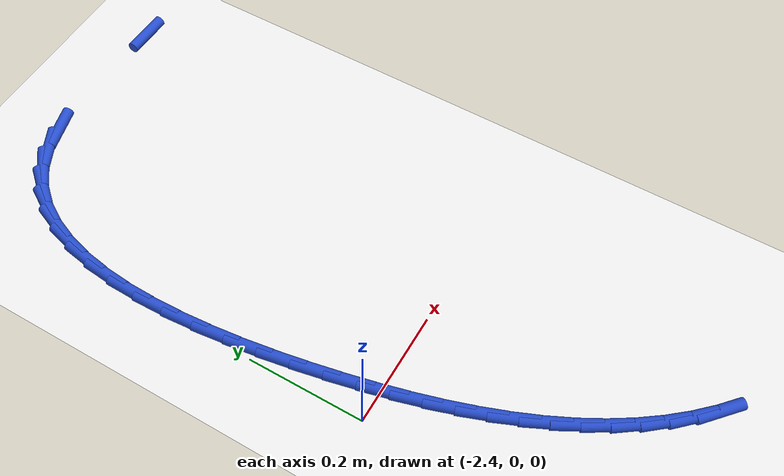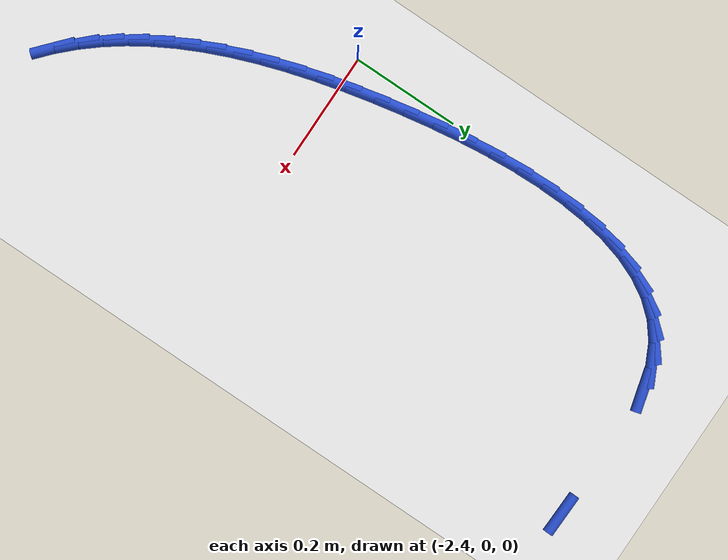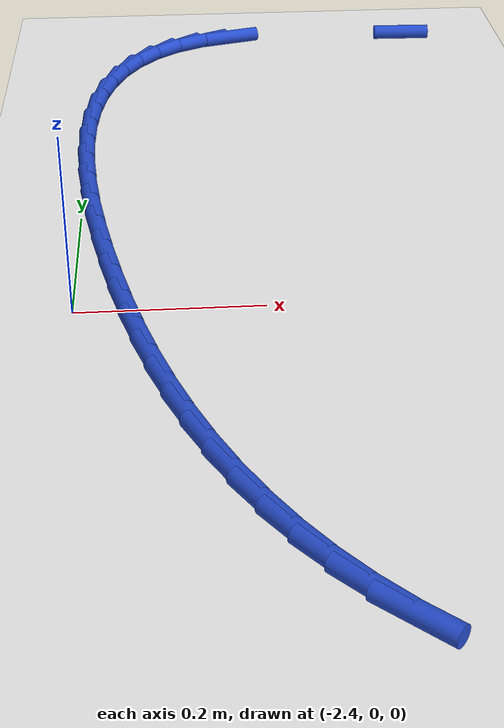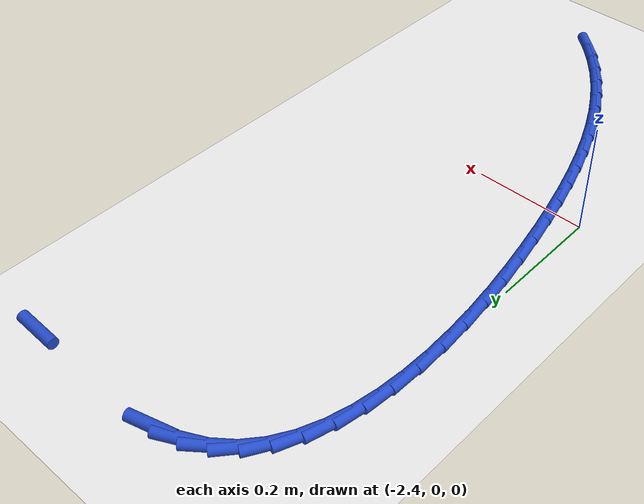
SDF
<sdf version="1.6">
 <world name="default">
  <model name="ground_plane">
   <static>1</static>
   <link name="link">
    <collision name="collision">
     <geometry><plane><normal>0 0 1</normal><size>100 100</size></plane></geometry>
     <surface><friction><ode><mu>100</mu><mu2>50</mu2></ode></friction></surface>
    </collision>
    <visual name="visual">
     <cast_shadows>0</cast_shadows>
     <geometry><plane><normal>0 0 1</normal><size>100 100</size></plane></geometry>
     <material>
      <script><uri>file://media/materials/scripts/gazebo.material</uri><name>Gazebo/WhiteGlow</name></script>
     </material>
    </visual>
   </link>
  </model>
  <model name="line">
   <link name="link_75">
    <pose>-1.9438546831373504 0.7327831597755781 0.01 0 1.57 -0.02640007319044443</pose>
    <collision name="collision">
     <geometry><cylinder><radius>0.01</radius><length>0.08</length></cylinder></geometry>
    </collision>
    <visual name="visual">
     <material>
      <script><name>Gazebo/Blue</name><uri>file://media/materials/scripts/gazebo.material</uri></script>
     </material>
     <geometry><cylinder><radius>0.01</radius><length>0.08</length></cylinder></geometry>
    </visual>
   </link>
   <link name="link_80">
    <pose>-2.2007338427092966 0.7302829812347585 0.01 0 1.57 0.2680769028519697</pose>
    <collision name="collision">
     <geometry><cylinder><radius>0.01</radius><length>0.08</length></cylinder></geometry>
    </collision>
    <visual name="visual">
     <material>
      <script><name>Gazebo/Blue</name><uri>file://media/materials/scripts/gazebo.material</uri></script>
     </material>
     <geometry><cylinder><radius>0.01</radius><length>0.08</length></cylinder></geometry>
    </visual>
   </link>
   <link name="link_81">
    <pose>-2.2440853555188984 0.7183748045654406 0.01 0 1.57 0.46483263923988277</pose>
    <collision name="collision">
     <geometry><cylinder><radius>0.01</radius><length>0.08</length></cylinder></geometry>
    </collision>
    <visual name="visual">
     <material>
      <script><name>Gazebo/Blue</name><uri>file://media/materials/scripts/gazebo.material</uri></script>
     </material>
     <geometry><cylinder><radius>0.01</radius><length>0.08</length></cylinder></geometry>
    </visual>
   </link>
   <link name="link_82">
    <pose>-2.281300136074665 0.6997122557791133 0.01 0 1.57 0.6706461991000373</pose>
    <collision name="collision">
     <geometry><cylinder><radius>0.01</radius><length>0.08</length></cylinder></geometry>
    </collision>
    <visual name="visual">
     <material>
      <script><name>Gazebo/Blue</name><uri>file://media/materials/scripts/gazebo.material</uri></script>
     </material>
     <geometry><cylinder><radius>0.01</radius><length>0.08</length></cylinder></geometry>
    </visual>
   </link>
   <link name="link_83">
    <pose>-2.3126838680454167 0.6748153368871916 0.01 0 1.57 0.8671831267043318</pose>
    <collision name="collision">
     <geometry><cylinder><radius>0.01</radius><length>0.08</length></cylinder></geometry>
    </collision>
    <visual name="visual">
     <material>
      <script><name>Gazebo/Blue</name><uri>file://media/materials/scripts/gazebo.material</uri></script>
     </material>
     <geometry><cylinder><radius>0.01</radius><length>0.08</length></cylinder></geometry>
    </visual>
   </link>
   <link name="link_84">
    <pose>-2.3386044183181265 0.6442660808398993 0.01 0 1.57 1.0417346272126988</pose>
    <collision name="collision">
     <geometry><cylinder><radius>0.01</radius><length>0.08</length></cylinder></geometry>
    </collision>
    <visual name="visual">
     <material>
      <script><name>Gazebo/Blue</name><uri>file://media/materials/scripts/gazebo.material</uri></script>
     </material>
     <geometry><cylinder><radius>0.01</radius><length>0.08</length></cylinder></geometry>
    </visual>
   </link>
   <link name="link_85">
    <pose>-2.359429653779772 0.60864652058746 0.01 0 1.57 1.1891157607490466</pose>
    <collision name="collision">
     <geometry><cylinder><radius>0.01</radius><length>0.08</length></cylinder></geometry>
    </collision>
    <visual name="visual">
     <material>
      <script><name>Gazebo/Blue</name><uri>file://media/materials/scripts/gazebo.material</uri></script>
     </material>
     <geometry><cylinder><radius>0.01</radius><length>0.08</length></cylinder></geometry>
    </visual>
   </link>
   <link name="link_86">
    <pose>-2.375527441317329 0.5685386890800983 0.01 0 1.57 1.31017015235859</pose>
    <collision name="collision">
     <geometry><cylinder><radius>0.01</radius><length>0.08</length></cylinder></geometry>
    </collision>
    <visual name="visual">
     <material>
      <script><name>Gazebo/Blue</name><uri>file://media/materials/scripts/gazebo.material</uri></script>
     </material>
     <geometry><cylinder><radius>0.01</radius><length>0.08</length></cylinder></geometry>
    </visual>
   </link>
   <link name="link_87">
    <pose>-2.3872656478177747 0.524524619268038 0.01 0 1.57 1.4085927790618753</pose>
    <collision name="collision">
     <geometry><cylinder><radius>0.01</radius><length>0.08</length></cylinder></geometry>
    </collision>
    <visual name="visual">
     <material>
      <script><name>Gazebo/Blue</name><uri>file://media/materials/scripts/gazebo.material</uri></script>
     </material>
     <geometry><cylinder><radius>0.01</radius><length>0.08</length></cylinder></geometry>
    </visual>
   </link>
   <link name="link_88">
    <pose>-2.395012140168083 0.4771863441015016 0.01 0 1.57 1.4886610747038382</pose>
    <collision name="collision">
     <geometry><cylinder><radius>0.01</radius><length>0.08</length></cylinder></geometry>
    </collision>
    <visual name="visual">
     <material>
      <script><name>Gazebo/Blue</name><uri>file://media/materials/scripts/gazebo.material</uri></script>
     </material>
     <geometry><cylinder><radius>0.01</radius><length>0.08</length></cylinder></geometry>
    </visual>
   </link>
   <link name="link_89">
    <pose>-2.399134785255231 0.42710589653071496 0.01 0 1.57 1.5542079753903602</pose>
    <collision name="collision">
     <geometry><cylinder><radius>0.01</radius><length>0.08</length></cylinder></geometry>
    </collision>
    <visual name="visual">
     <material>
      <script><name>Gazebo/Blue</name><uri>file://media/materials/scripts/gazebo.material</uri></script>
     </material>
     <geometry><cylinder><radius>0.01</radius><length>0.08</length></cylinder></geometry>
    </visual>
   </link>
   <link name="link_90">
    <pose>-2.4000014499661955 0.3748653095059009 0.01 0 1.57 -1.5332536284616005</pose>
    <collision name="collision">
     <geometry><cylinder><radius>0.01</radius><length>0.08</length></cylinder></geometry>
    </collision>
    <visual name="visual">
     <material>
      <script><name>Gazebo/Blue</name><uri>file://media/materials/scripts/gazebo.material</uri></script>
     </material>
     <geometry><cylinder><radius>0.01</radius><length>0.08</length></cylinder></geometry>
    </visual>
   </link>
   <link name="link_91">
    <pose>-2.3979800011879524 0.3210466159772836 0.01 0 1.57 -1.4881298246668426</pose>
    <collision name="collision">
     <geometry><cylinder><radius>0.01</radius><length>0.08</length></cylinder></geometry>
    </collision>
    <visual name="visual">
     <material>
      <script><name>Gazebo/Blue</name><uri>file://media/materials/scripts/gazebo.material</uri></script>
     </material>
     <geometry><cylinder><radius>0.01</radius><length>0.08</length></cylinder></geometry>
    </visual>
   </link>
   <link name="link_92">
    <pose>-2.393438305807477 0.26623184889508567 0.01 0 1.57 -1.4501784725371618</pose>
    <collision name="collision">
     <geometry><cylinder><radius>0.01</radius><length>0.08</length></cylinder></geometry>
    </collision>
    <visual name="visual">
     <material>
      <script><name>Gazebo/Blue</name><uri>file://media/materials/scripts/gazebo.material</uri></script>
     </material>
     <geometry><cylinder><radius>0.01</radius><length>0.08</length></cylinder></geometry>
    </visual>
   </link>
   <link name="link_93">
    <pose>-2.3867442307117455 0.2110030412095331 0.01 0 1.57 -1.418010508958739</pose>
    <collision name="collision">
     <geometry><cylinder><radius>0.01</radius><length>0.08</length></cylinder></geometry>
    </collision>
    <visual name="visual">
     <material>
      <script><name>Gazebo/Blue</name><uri>file://media/materials/scripts/gazebo.material</uri></script>
     </material>
     <geometry><cylinder><radius>0.01</radius><length>0.08</length></cylinder></geometry>
    </visual>
   </link>
   <link name="link_94">
    <pose>-2.378265642787734 0.15594222587084877 0.01 0 1.57 -1.3905766749092872</pose>
    <collision name="collision">
     <geometry><cylinder><radius>0.01</radius><length>0.08</length></cylinder></geometry>
    </collision>
    <visual name="visual">
     <material>
      <script><name>Gazebo/Blue</name><uri>file://media/materials/scripts/gazebo.material</uri></script>
     </material>
     <geometry><cylinder><radius>0.01</radius><length>0.08</length></cylinder></geometry>
    </visual>
   </link>
   <link name="link_95">
    <pose>-2.36837040892242 0.1016314358292567 0.01 0 1.57 -1.3668298525879674</pose>
    <collision name="collision">
     <geometry><cylinder><radius>0.01</radius><length>0.08</length></cylinder></geometry>
    </collision>
    <visual name="visual">
     <material>
      <script><name>Gazebo/Blue</name><uri>file://media/materials/scripts/gazebo.material</uri></script>
     </material>
     <geometry><cylinder><radius>0.01</radius><length>0.08</length></cylinder></geometry>
    </visual>
   </link>
   <link name="link_96">
    <pose>-2.3574078660716054 0.04863205361115291 0.01 0 1.57 -1.342612324345396</pose>
    <collision name="collision">
     <geometry><cylinder><radius>0.01</radius><length>0.08</length></cylinder></geometry>
    </collision>
    <visual name="visual">
     <material>
      <script><name>Gazebo/Blue</name><uri>file://media/materials/scripts/gazebo.material</uri></script>
     </material>
     <geometry><cylinder><radius>0.01</radius><length>0.08</length></cylinder></geometry>
    </visual>
   </link>
   <link name="link_97">
    <pose>-2.3454675779461387 -0.0027840389334285527 0.01 0 1.57 -1.3149503644411586</pose>
    <collision name="collision">
     <geometry><cylinder><radius>0.01</radius><length>0.08</length></cylinder></geometry>
    </collision>
    <visual name="visual">
     <material>
      <script><name>Gazebo/Blue</name><uri>file://media/materials/scripts/gazebo.material</uri></script>
     </material>
     <geometry><cylinder><radius>0.01</radius><length>0.08</length></cylinder></geometry>
    </visual>
   </link>
   <link name="link_98">
    <pose>-2.332447718006426 -0.05255825215458596 0.01 0 1.57 -1.2835026665913085</pose>
    <collision name="collision">
     <geometry><cylinder><radius>0.01</radius><length>0.08</length></cylinder></geometry>
    </collision>
    <visual name="visual">
     <material>
      <script><name>Gazebo/Blue</name><uri>file://media/materials/scripts/gazebo.material</uri></script>
     </material>
     <geometry><cylinder><radius>0.01</radius><length>0.08</length></cylinder></geometry>
    </visual>
   </link>
   <link name="link_99">
    <pose>-2.3182420077556154 -0.10063695782420434 0.01 0 1.57 -1.2479845329173813</pose>
    <collision name="collision">
     <geometry><cylinder><radius>0.01</radius><length>0.08</length></cylinder></geometry>
    </collision>
    <visual name="visual">
     <material>
      <script><name>Gazebo/Blue</name><uri>file://media/materials/scripts/gazebo.material</uri></script>
     </material>
     <geometry><cylinder><radius>0.01</radius><length>0.08</length></cylinder></geometry>
    </visual>
   </link>
   <link name="link_100">
    <pose>-2.302744168696852 -0.14696652771417193 0.01 0 1.57 -1.2081192108872756</pose>
    <collision name="collision">
     <geometry><cylinder><radius>0.01</radius><length>0.08</length></cylinder></geometry>
    </collision>
    <visual name="visual">
     <material>
      <script><name>Gazebo/Blue</name><uri>file://media/materials/scripts/gazebo.material</uri></script>
     </material>
     <geometry><cylinder><radius>0.01</radius><length>0.08</length></cylinder></geometry>
    </visual>
   </link>
   <link name="link_101">
    <pose>-2.285847922333284 -0.19149333359637571 0.01 0 1.57 -1.1636573165486357</pose>
    <collision name="collision">
     <geometry><cylinder><radius>0.01</radius><length>0.08</length></cylinder></geometry>
    </collision>
    <visual name="visual">
     <material>
      <script><name>Gazebo/Blue</name><uri>file://media/materials/scripts/gazebo.material</uri></script>
     </material>
     <geometry><cylinder><radius>0.01</radius><length>0.08</length></cylinder></geometry>
    </visual>
   </link>
   <link name="link_102">
    <pose>-2.2674469901680583 -0.23416374724270297 0.01 0 1.57 -1.114403399850861</pose>
    <collision name="collision">
     <geometry><cylinder><radius>0.01</radius><length>0.08</length></cylinder></geometry>
    </collision>
    <visual name="visual">
     <material>
      <script><name>Gazebo/Blue</name><uri>file://media/materials/scripts/gazebo.material</uri></script>
     </material>
     <geometry><cylinder><radius>0.01</radius><length>0.08</length></cylinder></geometry>
    </visual>
   </link>
   <link name="link_103">
    <pose>-2.2474350937043197 -0.27492414042504143 0.01 0 1.57 -1.0602498798719993</pose>
    <collision name="collision">
     <geometry><cylinder><radius>0.01</radius><length>0.08</length></cylinder></geometry>
    </collision>
    <visual name="visual">
     <material>
      <script><name>Gazebo/Blue</name><uri>file://media/materials/scripts/gazebo.material</uri></script>
     </material>
     <geometry><cylinder><radius>0.01</radius><length>0.08</length></cylinder></geometry>
    </visual>
   </link>
   <link name="link_104">
    <pose>-2.2257059544452162 -0.3137208849152767 0.01 0 1.57 -1.001216974414294</pose>
    <collision name="collision">
     <geometry><cylinder><radius>0.01</radius><length>0.08</length></cylinder></geometry>
    </collision>
    <visual name="visual">
     <material>
      <script><name>Gazebo/Blue</name><uri>file://media/materials/scripts/gazebo.material</uri></script>
     </material>
     <geometry><cylinder><radius>0.01</radius><length>0.08</length></cylinder></geometry>
    </visual>
   </link>
   <link name="link_105">
    <pose>-2.2021532938938955 -0.35050035248529665 0.01 0 1.57 -0.9374947401389842</pose>
    <collision name="collision">
     <geometry><cylinder><radius>0.01</radius><length>0.08</length></cylinder></geometry>
    </collision>
    <visual name="visual">
     <material>
      <script><name>Gazebo/Blue</name><uri>file://media/materials/scripts/gazebo.material</uri></script>
     </material>
     <geometry><cylinder><radius>0.01</radius><length>0.08</length></cylinder></geometry>
    </visual>
   </link>
   <link name="link_106">
    <pose>-2.1766708335535028 -0.3852089149069883 0.01 0 1.57 -0.869480219508316</pose>
    <collision name="collision">
     <geometry><cylinder><radius>0.01</radius><length>0.08</length></cylinder></geometry>
    </collision>
    <visual name="visual">
     <material>
      <script><name>Gazebo/Blue</name><uri>file://media/materials/scripts/gazebo.material</uri></script>
     </material>
     <geometry><cylinder><radius>0.01</radius><length>0.08</length></cylinder></geometry>
    </visual>
   </link>
   <link name="link_107">
    <pose>-2.149152294927186 -0.41779294395223904 0.01 0 1.57 -0.7977999277459963</pose>
    <collision name="collision">
     <geometry><cylinder><radius>0.01</radius><length>0.08</length></cylinder></geometry>
    </collision>
    <visual name="visual">
     <material>
      <script><name>Gazebo/Blue</name><uri>file://media/materials/scripts/gazebo.material</uri></script>
     </material>
     <geometry><cylinder><radius>0.01</radius><length>0.08</length></cylinder></geometry>
    </visual>
   </link>
   <link name="link_108">
    <pose>-2.1194913995180906 -0.4481988113929357 0.01 0 1.57 -0.723307161695136</pose>
    <collision name="collision">
     <geometry><cylinder><radius>0.01</radius><length>0.08</length></cylinder></geometry>
    </collision>
    <visual name="visual">
     <material>
      <script><name>Gazebo/Blue</name><uri>file://media/materials/scripts/gazebo.material</uri></script>
     </material>
     <geometry><cylinder><radius>0.01</radius><length>0.08</length></cylinder></geometry>
    </visual>
   </link>
  </model>
 </world>
</sdf>
